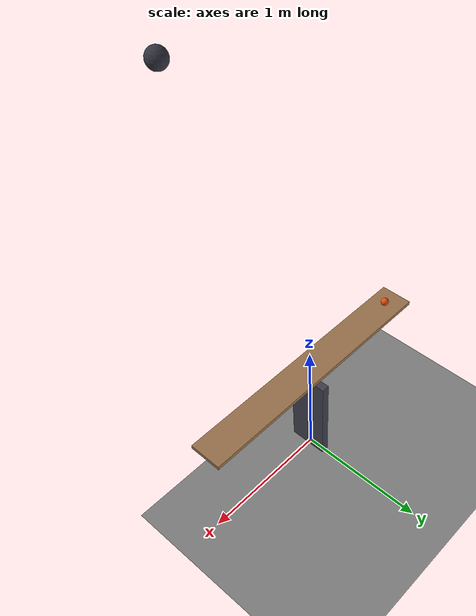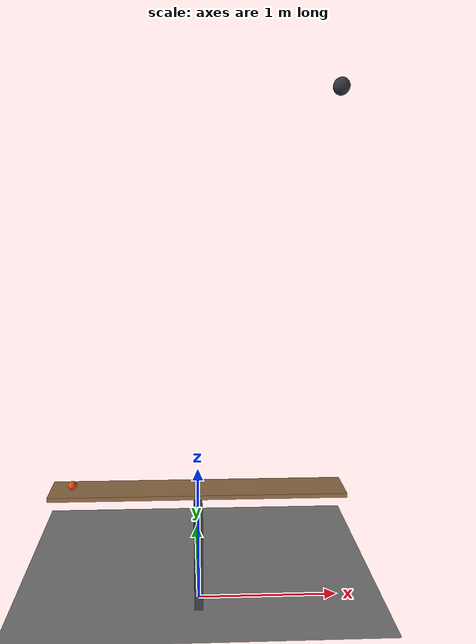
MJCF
<mujoco model="drop_powered_seesaw">
  <compiler angle="radian"/>
  <option timestep="0.002"/>
  <worldbody>
    <geom name="floor" type="plane" size="8 8 0.1" friction="0.8 0.005 0.002"/>
    <body name="support">
      <geom name="support" type="box" pos="0 0 0.375" size="0.03 0.15 0.375" rgba="0.25 0.25 0.3 1"/>
    </body>
    <body name="pivot">
    </body>
    <body name="seesaw" pos="0 0 0.85">
      <joint name="seesaw_hinge" type="hinge" pos="0 0 0" axis="0 1 0" limited="true" range="0 0.785398" damping="0.01" armature="0.001"/>
      <geom name="seesaw" type="box" pos="0 0 0" size="1 0.125 0.015" mass="0.4" friction="0.8 0.005 0.002" solref="0.01 1" rgba="0.6 0.45 0.3 1"/>
    </body>
    <body name="ball" pos="-0.85 0 0.895">
      <freejoint/>
      <geom name="ball" type="sphere" pos="0 0 0" size="0.03" mass="0.1" condim="6" friction="0.8 0.005 0.002" solref="0.01 1" rgba="0.9 0.3 0.05 1"/>
    </body>
    <body name="weight" pos="0.85 0 3.4">
      <freejoint/>
      <geom name="weight" type="sphere" pos="0 0 0" size="0.05" mass="1" condim="6" friction="0.8 0.005 0.002" solref="0.01 1" rgba="0.2 0.2 0.25 1"/>
    </body>
  </worldbody>
  <keyframe>
    <key name="start" qpos="0 -0.85 0 0.895 1 0 0 0 0.85 0 3.4 1 0 0 0" qvel="0 0 0 0 0 0 0 0 0 0 0 0 0"/>
  </keyframe>
</mujoco>
